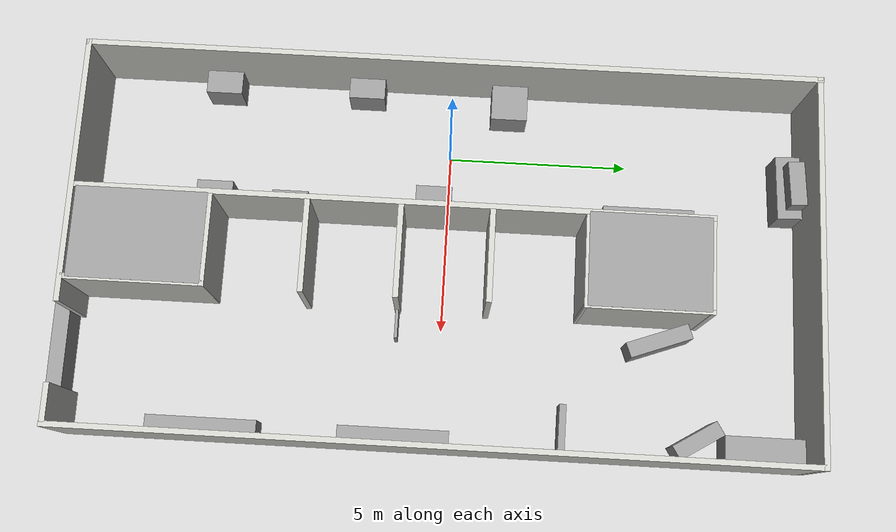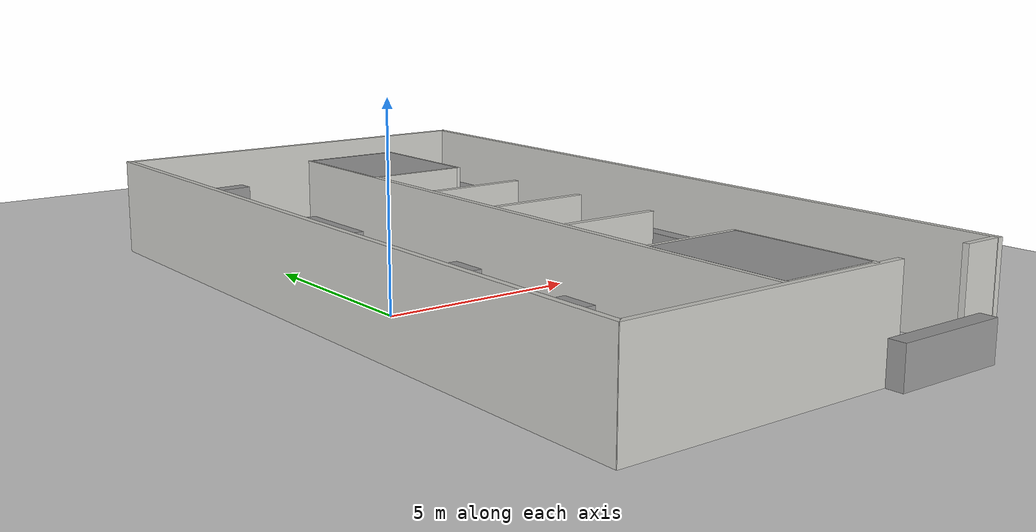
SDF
<sdf version="1.7">
 <world name="default">
  <light name="sun" type="directional">
   <pose>0 0 10 0 -0 0</pose>
   <diffuse>0.8 0.8 0.8 1</diffuse>
   <specular>0.2 0.2 0.2 1</specular>
   <attenuation>
    <range>1000</range>
    <constant>0.9</constant>
    <linear>0.01</linear>
    <quadratic>0.001</quadratic>
   </attenuation>
   <direction>-0.5 0.1 -0.9</direction>
   <spot><inner_angle>0</inner_angle><outer_angle>0</outer_angle><falloff>0</falloff></spot>
  </light>
  <model name="ground_plane">
   <static>1</static>
   <link name="link">
    <collision name="collision">
     <geometry><plane><normal>0 0 1</normal><size>100 100</size></plane></geometry>
     <surface>
      <contact><collide_bitmask>65535</collide_bitmask></contact>
      <friction><ode><mu>100</mu><mu2>50</mu2></ode></friction>
     </surface>
    </collision>
    <visual name="visual">
     <cast_shadows>0</cast_shadows>
     <geometry><plane><normal>0 0 1</normal><size>100 100</size></plane></geometry>
     <material>
      <script><uri>file://media/materials/scripts/gazebo.material</uri><name>Gazebo/Grey</name></script>
     </material>
    </visual>
   </link>
  </model>
  <gravity>0 0 -9.8</gravity>
  <magnetic_field>6e-06 2.3e-05 -4.2e-05</magnetic_field>
  <atmosphere type="adiabatic"/>
  <physics type="ode">
   <max_step_size>0.001</max_step_size>
   <real_time_factor>1</real_time_factor>
   <real_time_update_rate>1000</real_time_update_rate>
  </physics>
  <scene><ambient>0.4 0.4 0.4 1</ambient><background>0.7 0.7 0.7 1</background><shadows>1</shadows></scene>
  <audio><device>default</device></audio>
  <spherical_coordinates>
   <surface_model>EARTH_WGS84</surface_model>
   <latitude_deg>0</latitude_deg>
   <longitude_deg>0</longitude_deg>
   <elevation>0</elevation>
   <heading_deg>0</heading_deg>
  </spherical_coordinates>
  <model name="game_room">
   <pose>3.13909 -0.042829 0 0 -0 0</pose>
   <link name="Wall_14">
    <collision name="Wall_14_Collision">
     <geometry><box><size>20 0.15 2.5</size></box></geometry>
     <pose>0 0 1.25 0 -0 0</pose>
    </collision>
    <visual name="Wall_14_Visual">
     <pose>0 0 1.25 0 -0 0</pose>
     <geometry><box><size>20 0.15 2.5</size></box></geometry>
     <material>
      <script><uri>file://media/materials/scripts/gazebo.material</uri><name>Gazebo/CeilingTiled</name></script>
      <ambient>1 1 1 1</ambient>
     </material>
     <meta><layer>0</layer></meta>
    </visual>
    <pose>-5.16855 0.008499 0 0 -0 -1.5708</pose>
   </link>
   <link name="Wall_29">
    <collision name="Wall_29_Collision">
     <geometry><box><size>17 0.15 2.5</size></box></geometry>
     <pose>0 0 1.25 0 -0 0</pose>
    </collision>
    <visual name="Wall_29_Visual">
     <pose>0 0 1.25 0 -0 0</pose>
     <geometry><box><size>17 0.15 2.5</size></box></geometry>
     <material>
      <script><uri>file://media/materials/scripts/gazebo.material</uri><name>Gazebo/CeilingTiled</name></script>
      <ambient>1 1 1 1</ambient>
     </material>
     <meta><layer>0</layer></meta>
    </visual>
    <pose>-1.14655 -1.3685 0 0 -0 1.5708</pose>
   </link>
   <link name="Wall_31">
    <collision name="Wall_31_Collision">
     <geometry><box><size>2.5 0.15 2.5</size></box></geometry>
     <pose>0 0 1.25 0 -0 0</pose>
    </collision>
    <visual name="Wall_31_Visual">
     <pose>0 0 1.25 0 -0 0</pose>
     <geometry><box><size>2.5 0.15 2.5</size></box></geometry>
     <material>
      <script><uri>file://media/materials/scripts/gazebo.material</uri><name>Gazebo/CeilingTiled</name></script>
      <ambient>1 1 1 1</ambient>
     </material>
     <meta><layer>0</layer></meta>
    </visual>
    <pose>0.166446 -6.2425 0 0 -0 3.14159</pose>
   </link>
   <link name="Wall_33">
    <collision name="Wall_33_Collision">
     <geometry><box><size>2.5 0.15 2.5</size></box></geometry>
     <pose>0 0 1.25 0 -0 0</pose>
    </collision>
    <visual name="Wall_33_Visual">
     <pose>0 0 1.25 0 -0 0</pose>
     <geometry><box><size>2.5 0.15 2.5</size></box></geometry>
     <material>
      <script><uri>file://media/materials/scripts/gazebo.material</uri><name>Gazebo/CeilingTiled</name></script>
      <ambient>1 1 1 1</ambient>
     </material>
     <meta><layer>0</layer></meta>
    </visual>
    <pose>0.169446 -3.6585 0 0 -0 3.14159</pose>
   </link>
   <link name="Wall_35">
    <collision name="Wall_35_Collision">
     <geometry><box><size>2.5 0.15 2.5</size></box></geometry>
     <pose>0 0 1.25 0 -0 0</pose>
    </collision>
    <visual name="Wall_35_Visual">
     <pose>0 0 1.25 0 -0 0</pose>
     <geometry><box><size>2.5 0.15 2.5</size></box></geometry>
     <material>
      <script><uri>file://media/materials/scripts/gazebo.material</uri><name>Gazebo/CeilingTiled</name></script>
      <ambient>1 1 1 1</ambient>
     </material>
     <meta><layer>0</layer></meta>
    </visual>
    <pose>0.180446 -1.1755 0 0 -0 0</pose>
   </link>
   <link name="Wall_37">
    <collision name="Wall_37_Collision">
     <geometry><box><size>2.5 0.15 2.5</size></box></geometry>
     <pose>0 0 1.25 0 -0 0</pose>
    </collision>
    <visual name="Wall_37_Visual">
     <pose>0 0 1.25 0 -0 0</pose>
     <geometry><box><size>2.5 0.15 2.5</size></box></geometry>
     <material>
      <script><uri>file://media/materials/scripts/gazebo.material</uri><name>Gazebo/CeilingTiled</name></script>
      <ambient>1 1 1 1</ambient>
     </material>
     <meta><layer>0</layer></meta>
    </visual>
    <pose>0.171446 1.2535 0 0 -0 0</pose>
   </link>
   <link name="Wall_39">
    <collision name="Wall_39_Collision">
     <geometry><box><size>2.5 0.15 2.5</size></box></geometry>
     <pose>0 0 1.25 0 -0 0</pose>
    </collision>
    <visual name="Wall_39_Visual">
     <pose>0 0 1.25 0 -0 0</pose>
     <geometry><box><size>2.5 0.15 2.5</size></box></geometry>
     <material>
      <script><uri>file://media/materials/scripts/gazebo.material</uri><name>Gazebo/CeilingTiled</name></script>
      <ambient>1 1 1 1</ambient>
     </material>
     <meta><layer>0</layer></meta>
    </visual>
    <pose>0.174446 3.79326 0 0 -0 0.0002</pose>
   </link>
   <link name="Wall_43">
    <collision name="Wall_43_Collision">
     <geometry><box><size>3.75 0.15 2.5</size></box></geometry>
     <pose>0 0 1.25 0 -0 0</pose>
    </collision>
    <visual name="Wall_43_Visual">
     <pose>0 0 1.25 0 -0 0</pose>
     <geometry><box><size>3.75 0.15 2.5</size></box></geometry>
     <material>
      <script><uri>file://media/materials/scripts/gazebo.material</uri><name>Gazebo/CeilingTiled</name></script>
      <ambient>1 1 1 1</ambient>
     </material>
     <meta><layer>0</layer></meta>
    </visual>
    <pose>1.34145 -8.0495 0 0 -0 -1.5708</pose>
   </link>
   <link name="Wall_45">
    <collision name="Wall_45_Collision">
     <geometry><box><size>2.5 0.15 2.5</size></box></geometry>
     <pose>0 0 1.25 0 -0 0</pose>
    </collision>
    <visual name="Wall_45_Visual">
     <pose>0 0 1.25 0 -0 0</pose>
     <geometry><box><size>2.5 0.15 2.5</size></box></geometry>
     <material>
      <script><uri>file://media/materials/scripts/gazebo.material</uri><name>Gazebo/CeilingTiled</name></script>
      <ambient>1 1 1 1</ambient>
     </material>
     <meta><layer>0</layer></meta>
    </visual>
    <pose>0.179359 7.05532 0 0 -0 0.000156</pose>
   </link>
   <link name="Wall_50">
    <collision name="Wall_50_Collision">
     <geometry><box><size>10.4848 0.15 2.5</size></box></geometry>
     <pose>0 0 1.25 0 -0 0</pose>
    </collision>
    <visual name="Wall_50_Visual">
     <pose>0 0 1.25 0 -0 0</pose>
     <geometry><box><size>10.4848 0.15 2.5</size></box></geometry>
     <material>
      <script><uri>file://media/materials/scripts/gazebo.material</uri><name>Gazebo/CeilingTiled</name></script>
      <ambient>1 1 1 1</ambient>
     </material>
     <meta><layer>0</layer></meta>
    </visual>
    <pose>0.001064 9.919 0 0 -0 -3.14014</pose>
   </link>
   <link name="Wall_54">
    <collision name="Wall_54_Collision">
     <geometry><box><size>7.25 0.15 2.5</size></box></geometry>
     <pose>0 0 1.25 0 -0 0</pose>
    </collision>
    <visual name="Wall_54_Visual">
     <pose>0 0 1.25 0 -0 0</pose>
     <geometry><box><size>7.25 0.15 2.5</size></box></geometry>
     <material>
      <script><uri>file://media/materials/scripts/gazebo.material</uri><name>Gazebo/CeilingTiled</name></script>
      <ambient>1 1 1 1</ambient>
     </material>
     <meta><layer>0</layer></meta>
    </visual>
    <pose>-1.61255 -9.9335 0 0 -0 0</pose>
   </link>
   <link name="Wall_64">
    <collision name="Wall_64_Collision">
     <geometry><box><size>3.41211 0.15 2.5</size></box></geometry>
     <pose>0 0 1.25 0 -0 0</pose>
    </collision>
    <visual name="Wall_64_Visual">
     <pose>0 0 1.25 0 -0 0</pose>
     <geometry><box><size>3.41211 0.15 2.5</size></box></geometry>
     <material>
      <script><uri>file://media/materials/scripts/gazebo.material</uri><name>Gazebo/CeilingTiled</name></script>
      <ambient>1 1 1 1</ambient>
     </material>
     <meta><layer>0</layer></meta>
    </visual>
    <pose>1.35195 5.4245 0 0 -0 -1.57233</pose>
   </link>
   <link name="Wall_68">
    <collision name="Wall_68_Collision">
     <geometry><box><size>20 0.15 2.5</size></box></geometry>
     <pose>0 0 1.25 0 -0 0</pose>
    </collision>
    <visual name="Wall_68_Visual">
     <pose>0 0 1.25 0 -0 0</pose>
     <geometry><box><size>20 0.15 2.5</size></box></geometry>
     <material>
      <script><uri>file://media/materials/scripts/gazebo.material</uri><name>Gazebo/CeilingTiled</name></script>
      <ambient>1 1 1 1</ambient>
     </material>
     <meta><layer>0</layer></meta>
    </visual>
    <pose>5.16845 0.001499 0 0 -0 -1.5708</pose>
   </link>
   <link name="Wall_72">
    <collision name="Wall_72_Collision">
     <geometry><box><size>1 0.15 2.5</size></box></geometry>
     <pose>0 0 1.25 0 -0 0</pose>
    </collision>
    <visual name="Wall_72_Visual">
     <pose>0 0 1.25 0 -0 0</pose>
     <geometry><box><size>1 0.15 2.5</size></box></geometry>
     <material>
      <script><uri>file://media/materials/scripts/gazebo.material</uri><name>Gazebo/CeilingTiled</name></script>
      <ambient>1 1 1 1</ambient>
     </material>
     <meta><layer>0</layer></meta>
    </visual>
    <pose>4.61945 -9.9085 0 0 -0 0</pose>
   </link>
   <static>1</static>
  </model>
  <model name="unit_box">
   <pose>-1.63048 -6.47957 0.5 0 -0 -3.8e-05</pose>
   <link name="link">
    <inertial>
     <mass>1</mass>
     <inertia>
      <ixx>0.166667</ixx>
      <ixy>0</ixy>
      <ixz>0</ixz>
      <iyy>0.166667</iyy>
      <iyz>0</iyz>
      <izz>0.166667</izz>
     </inertia>
    </inertial>
    <collision name="collision"><geometry><box><size>0.647115 1 1</size></box></geometry></collision>
    <visual name="visual">
     <geometry><box><size>0.647115 1 1</size></box></geometry>
     <material>
      <script><name>Gazebo/Grey</name><uri>file://media/materials/scripts/gazebo.material</uri></script>
     </material>
    </visual>
   </link>
  </model>
  <model name="unit_box_clone_0_clone">
   <pose>1.68118 -4.37821 0.5 0 -0 9e-06</pose>
   <link name="link">
    <inertial>
     <mass>1</mass>
     <inertia>
      <ixx>0.166667</ixx>
      <ixy>0</ixy>
      <ixz>0</ixz>
      <iyy>0.166667</iyy>
      <iyz>0</iyz>
      <izz>0.166667</izz>
     </inertia>
    </inertial>
    <collision name="collision"><geometry><box><size>0.472732 1 1</size></box></geometry></collision>
    <visual name="visual">
     <geometry><box><size>0.472732 1 1</size></box></geometry>
     <material>
      <script><name>Gazebo/Grey</name><uri>file://media/materials/scripts/gazebo.material</uri></script>
     </material>
    </visual>
   </link>
  </model>
  <model name="unit_box_clone_0_clone_clone_clone">
   <pose>-1.66252 -2.44309 0.5 0 -0 -4e-06</pose>
   <link name="link">
    <inertial>
     <mass>1</mass>
     <inertia>
      <ixx>0.166667</ixx>
      <ixy>0</ixy>
      <ixz>0</ixz>
      <iyy>0.166667</iyy>
      <iyz>0</iyz>
      <izz>0.166667</izz>
     </inertia>
    </inertial>
    <collision name="collision"><geometry><box><size>0.583883 1 1</size></box></geometry></collision>
    <visual name="visual">
     <geometry><box><size>0.583883 1 1</size></box></geometry>
     <material>
      <script><name>Gazebo/Grey</name><uri>file://media/materials/scripts/gazebo.material</uri></script>
     </material>
    </visual>
   </link>
  </model>
  <model name="unit_box_clone_0_clone_clone_clone_clone">
   <pose>1.5068 -0.399322 0.5 0 -0 4e-06</pose>
   <link name="link">
    <inertial>
     <mass>1</mass>
     <inertia>
      <ixx>0.166667</ixx>
      <ixy>0</ixy>
      <ixz>0</ixz>
      <iyy>0.166667</iyy>
      <iyz>0</iyz>
      <izz>0.166667</izz>
     </inertia>
    </inertial>
    <collision name="collision"><geometry><box><size>0.821465 1 1</size></box></geometry></collision>
    <visual name="visual">
     <geometry><box><size>0.821465 1 1</size></box></geometry>
     <material>
      <script><name>Gazebo/Grey</name><uri>file://media/materials/scripts/gazebo.material</uri></script>
     </material>
    </visual>
   </link>
  </model>
  <model name="unit_box_clone_0_clone_clone_clone_clone_0">
   <pose>8.01655 -1.12223 0.499832 0.000113 1e-06 -0.000245</pose>
   <link name="link">
    <inertial>
     <mass>1</mass>
     <inertia>
      <ixx>0.166667</ixx>
      <ixy>0</ixy>
      <ixz>0</ixz>
      <iyy>0.166667</iyy>
      <iyz>0</iyz>
      <izz>0.166667</izz>
     </inertia>
    </inertial>
    <collision name="collision"><geometry><box><size>0.423503 2.97848 1</size></box></geometry></collision>
    <visual name="visual">
     <geometry><box><size>0.423503 2.97848 1</size></box></geometry>
     <material>
      <script><name>Gazebo/Grey</name><uri>file://media/materials/scripts/gazebo.material</uri></script>
     </material>
    </visual>
   </link>
  </model>
  <model name="unit_box_clone_0_clone_clone_clone_clone_0_clone">
   <pose>8.01637 -6.24316 0.499832 0.000113 -1e-06 -0.000633</pose>
   <link name="link">
    <inertial>
     <mass>1</mass>
     <inertia>
      <ixx>0.166667</ixx>
      <ixy>0</ixy>
      <ixz>0</ixz>
      <iyy>0.166667</iyy>
      <iyz>0</iyz>
      <izz>0.166667</izz>
     </inertia>
    </inertial>
    <collision name="collision"><geometry><box><size>0.423503 2.97848 1</size></box></geometry></collision>
    <visual name="visual">
     <geometry><box><size>0.423503 2.97848 1</size></box></geometry>
     <material>
      <script><name>Gazebo/Grey</name><uri>file://media/materials/scripts/gazebo.material</uri></script>
     </material>
    </visual>
   </link>
  </model>
  <model name="unit_box_clone_0_clone_clone_clone_clone_0_clone_0_clone">
   <pose>4.96342 -1.22117 0.381622 -0 -5e-06 1.57113</pose>
   <link name="link">
    <inertial>
     <mass>1</mass>
     <inertia>
      <ixx>0.166667</ixx>
      <ixy>0</ixy>
      <ixz>0</ixz>
      <iyy>0.166667</iyy>
      <iyz>0</iyz>
      <izz>0.166667</izz>
     </inertia>
    </inertial>
    <collision name="collision">
     <geometry><box><size>0.0853551 0.787733 0.763243</size></box></geometry>
    </collision>
    <visual name="visual">
     <geometry><box><size>0.0853551 0.787733 0.763243</size></box></geometry>
     <material>
      <script><name>Gazebo/Grey</name><uri>file://media/materials/scripts/gazebo.material</uri></script>
     </material>
    </visual>
   </link>
  </model>
  <model name="unit_box_clone_0_clone_clone_clone_clone_0_clone_clone">
   <pose>6.27295 -10.2641 0.499832 -0.000113 1e-06 -1.56563</pose>
   <link name="link">
    <inertial>
     <mass>1</mass>
     <inertia>
      <ixx>0.166667</ixx>
      <ixy>0</ixy>
      <ixz>0</ixz>
      <iyy>0.166667</iyy>
      <iyz>0</iyz>
      <izz>0.166667</izz>
     </inertia>
    </inertial>
    <collision name="collision"><geometry><box><size>0.423503 2.97848 1</size></box></geometry></collision>
    <visual name="visual">
     <geometry><box><size>0.423503 2.97848 1</size></box></geometry>
     <material>
      <script><name>Gazebo/Grey</name><uri>file://media/materials/scripts/gazebo.material</uri></script>
     </material>
    </visual>
   </link>
  </model>
  <model name="unit_box_clone_0_clone_clone_clone_clone_0_clone_1">
   <pose>7.68712 6.98289 0.499995 7e-06 -0 0.550663</pose>
   <link name="link">
    <inertial>
     <mass>1</mass>
     <inertia>
      <ixx>0.166667</ixx>
      <ixy>0</ixy>
      <ixz>0</ixz>
      <iyy>0.166667</iyy>
      <iyz>0</iyz>
      <izz>0.166667</izz>
     </inertia>
    </inertial>
    <collision name="collision"><geometry><box><size>0.423503 1.37859 1</size></box></geometry></collision>
    <visual name="visual">
     <geometry><box><size>0.423503 1.37859 1</size></box></geometry>
     <material>
      <script><name>Gazebo/Grey</name><uri>file://media/materials/scripts/gazebo.material</uri></script>
     </material>
    </visual>
   </link>
  </model>
  <model name="unit_box_clone_0_clone_clone_clone_clone_clone">
   <pose>-1.45443 1.58135 0.5 0 -0 -1e-06</pose>
   <link name="link">
    <inertial>
     <mass>1</mass>
     <inertia>
      <ixx>0.166667</ixx>
      <ixy>0</ixy>
      <ixz>0</ixz>
      <iyy>0.166667</iyy>
      <iyz>0</iyz>
      <izz>0.166667</izz>
     </inertia>
    </inertial>
    <collision name="collision"><geometry><box><size>1 1 1</size></box></geometry></collision>
    <visual name="visual">
     <geometry><box><size>1 1 1</size></box></geometry>
     <material>
      <script><name>Gazebo/Grey</name><uri>file://media/materials/scripts/gazebo.material</uri></script>
     </material>
    </visual>
   </link>
  </model>
  <model name="unit_box_clone_0_clone_clone_clone_clone_0_clone_1_clone">
   <pose>5.07218 5.91051 0.499999 2e-06 -0 0.351684</pose>
   <link name="link">
    <inertial>
     <mass>1</mass>
     <inertia>
      <ixx>0.166667</ixx>
      <ixy>0</ixy>
      <ixz>0</ixz>
      <iyy>0.166667</iyy>
      <iyz>0</iyz>
      <izz>0.166667</izz>
     </inertia>
    </inertial>
    <collision name="collision"><geometry><box><size>0.423503 1.77253 1</size></box></geometry></collision>
    <visual name="visual">
     <geometry><box><size>0.423503 1.77253 1</size></box></geometry>
     <material>
      <script><name>Gazebo/Grey</name><uri>file://media/materials/scripts/gazebo.material</uri></script>
     </material>
    </visual>
   </link>
  </model>
  <model name="unit_box_clone_0_clone_clone_clone_clone_1">
   <pose>1.65772 5.5541 0.499936 -5.1e-05 -0 -4e-06</pose>
   <link name="link">
    <inertial>
     <mass>1</mass>
     <inertia>
      <ixx>0.166667</ixx>
      <ixy>0</ixy>
      <ixz>0</ixz>
      <iyy>0.166667</iyy>
      <iyz>0</iyz>
      <izz>0.166667</izz>
     </inertia>
    </inertial>
    <collision name="collision"><geometry><box><size>0.519441 2.50765 1</size></box></geometry></collision>
    <visual name="visual">
     <geometry><box><size>0.519441 2.50765 1</size></box></geometry>
     <material>
      <script><name>Gazebo/Grey</name><uri>file://media/materials/scripts/gazebo.material</uri></script>
     </material>
    </visual>
   </link>
  </model>
  <model name="unit_box_clone_0_clone_clone_clone_clone_0_clone_1_clone_0">
   <pose>0.599967 9.41426 0.499994 -2e-06 1.9e-05 1.60133</pose>
   <link name="link">
    <inertial>
     <mass>1</mass>
     <inertia>
      <ixx>0.166667</ixx>
      <ixy>0</ixy>
      <ixz>0</ixz>
      <iyy>0.166667</iyy>
      <iyz>0</iyz>
      <izz>0.166667</izz>
     </inertia>
    </inertial>
    <collision name="collision"><geometry><box><size>0.674941 1.77253 1</size></box></geometry></collision>
    <visual name="visual">
     <geometry><box><size>0.674941 1.77253 1</size></box></geometry>
     <material>
      <script><name>Gazebo/Grey</name><uri>file://media/materials/scripts/gazebo.material</uri></script>
     </material>
    </visual>
   </link>
  </model>
  <model name="unit_box_clone_0_clone_clone_clone_clone_0_clone_1_clone_0_clone">
   <pose>0.614471 9.51865 1.26471 -0.024938 -1.57075 1.65641</pose>
   <link name="link">
    <inertial>
     <mass>1</mass>
     <inertia>
      <ixx>0.166667</ixx>
      <ixy>0</ixy>
      <ixz>0</ixz>
      <iyy>0.166667</iyy>
      <iyz>0</iyz>
      <izz>0.166667</izz>
     </inertia>
    </inertial>
    <collision name="collision"><geometry><box><size>0.529428 1.2254 0.441884</size></box></geometry></collision>
    <visual name="visual">
     <geometry><box><size>0.529428 1.2254 0.441884</size></box></geometry>
     <material>
      <script><name>Gazebo/Grey</name><uri>file://media/materials/scripts/gazebo.material</uri></script>
     </material>
    </visual>
   </link>
  </model>
  <model name="unit_box_clone_0_clone_clone_clone_clone_0_clone_1_clone_1">
   <pose>7.87008 8.74375 0.499977 -2.1e-05 -0 -8e-06</pose>
   <link name="link">
    <inertial>
     <mass>1</mass>
     <inertia>
      <ixx>0.166667</ixx>
      <ixy>0</ixy>
      <ixz>0</ixz>
      <iyy>0.166667</iyy>
      <iyz>0</iyz>
      <izz>0.166667</izz>
     </inertia>
    </inertial>
    <collision name="collision"><geometry><box><size>0.724969 2.12753 1</size></box></geometry></collision>
    <visual name="visual">
     <geometry><box><size>0.724969 2.12753 1</size></box></geometry>
     <material>
      <script><name>Gazebo/Grey</name><uri>file://media/materials/scripts/gazebo.material</uri></script>
     </material>
    </visual>
   </link>
  </model>
  <model name="unit_box_clone_0_clone_clone_clone_clone_0_clone_0_clone_clone">
   <pose>7.5198 3.37636 0.381619 3e-06 0 1.55647</pose>
   <link name="link">
    <inertial>
     <mass>1</mass>
     <inertia>
      <ixx>0.166667</ixx>
      <ixy>0</ixy>
      <ixz>0</ixz>
      <iyy>0.166667</iyy>
      <iyz>0</iyz>
      <izz>0.166667</izz>
     </inertia>
    </inertial>
    <collision name="collision"><geometry><box><size>0.184965 1.24602 0.763243</size></box></geometry></collision>
    <visual name="visual">
     <geometry><box><size>0.184965 1.24602 0.763243</size></box></geometry>
     <material>
      <script><name>Gazebo/Grey</name><uri>file://media/materials/scripts/gazebo.material</uri></script>
     </material>
    </visual>
   </link>
  </model>
  <model name="unit_box_clone_0_clone_clone_clone_clone_clone_0">
   <pose>3.24148 5.38186 2.50108 0 -0 0.000269</pose>
   <link name="link">
    <inertial>
     <mass>1</mass>
     <inertia>
      <ixx>0.166667</ixx>
      <ixy>0</ixy>
      <ixz>0</ixz>
      <iyy>0.166667</iyy>
      <iyz>0</iyz>
      <izz>0.166667</izz>
     </inertia>
    </inertial>
    <collision name="collision"><geometry><box><size>2.52412 3.23981 0.002176</size></box></geometry></collision>
    <visual name="visual">
     <geometry><box><size>2.52412 3.23981 0.002176</size></box></geometry>
     <material>
      <script><name>Gazebo/Grey</name><uri>file://media/materials/scripts/gazebo.material</uri></script>
     </material>
    </visual>
   </link>
  </model>
  <model name="unit_box_clone_0_clone_clone_clone_clone_clone_0_clone">
   <pose>3.26385 -8.08703 2.50108 -5e-06 0 0.000273</pose>
   <link name="link">
    <inertial>
     <mass>1</mass>
     <inertia>
      <ixx>0.166667</ixx>
      <ixy>0</ixy>
      <ixz>0</ixz>
      <iyy>0.166667</iyy>
      <iyz>0</iyz>
      <izz>0.166667</izz>
     </inertia>
    </inertial>
    <collision name="collision"><geometry><box><size>2.45693 3.51447 0.002176</size></box></geometry></collision>
    <visual name="visual">
     <geometry><box><size>2.45693 3.51447 0.002176</size></box></geometry>
     <material>
      <script><name>Gazebo/Grey</name><uri>file://media/materials/scripts/gazebo.material</uri></script>
     </material>
    </visual>
   </link>
  </model>
  <model name="unit_box_clone">
   <pose>1.59392 -6.47849 0.499997 0 -8e-06 6.3e-05</pose>
   <link name="link">
    <inertial>
     <mass>1</mass>
     <inertia>
      <ixx>0.166667</ixx>
      <ixy>0</ixy>
      <ixz>0</ixz>
      <iyy>0.166667</iyy>
      <iyz>0</iyz>
      <izz>0.166667</izz>
     </inertia>
    </inertial>
    <collision name="collision"><geometry><box><size>0.647115 1 1</size></box></geometry></collision>
    <visual name="visual">
     <geometry><box><size>0.647115 1 1</size></box></geometry>
     <material>
      <script><name>Gazebo/Grey</name><uri>file://media/materials/scripts/gazebo.material</uri></script>
     </material>
    </visual>
   </link>
  </model>
 </world>
</sdf>
